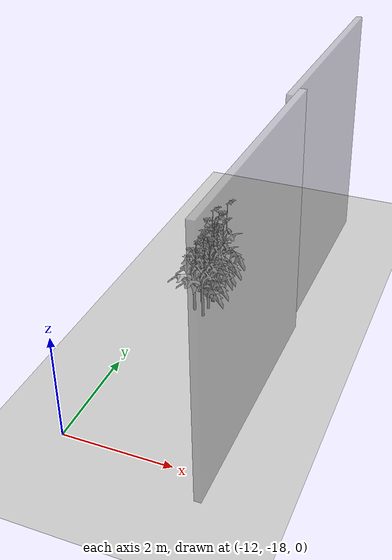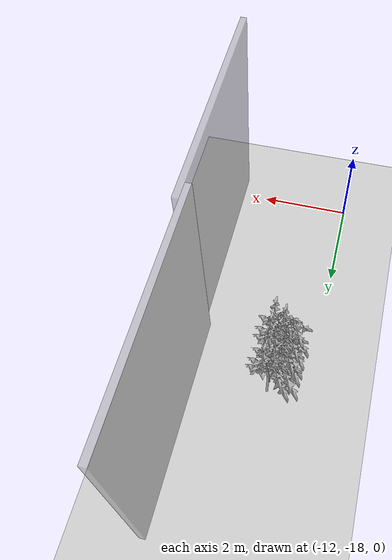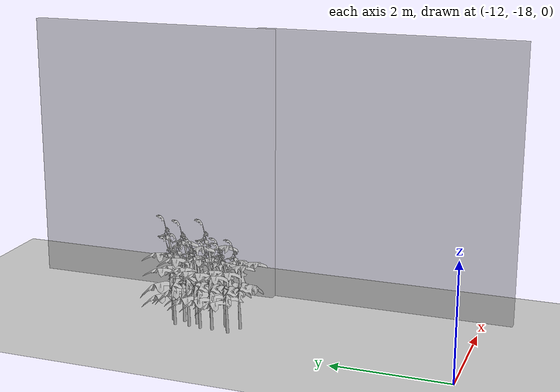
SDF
<sdf version="1.6">
 <world name="default">
  <model name="ground_plane">
   <static>1</static>
   <link name="link">
    <collision name="collision">
     <geometry><plane><normal>0 0 1</normal><size>100 100</size></plane></geometry>
     <surface>
      <contact><collide_bitmask>65535</collide_bitmask></contact>
      <friction><ode><mu>100</mu><mu2>50</mu2></ode></friction>
     </surface>
    </collision>
    <visual name="visual">
     <cast_shadows>0</cast_shadows>
     <geometry><plane><normal>0 0 1</normal><size>100 100</size></plane></geometry>
     <material>
      <script><uri>file://media/materials/scripts/gazebo.material</uri><name>Gazebo/Grey</name></script>
     </material>
    </visual>
   </link>
  </model>
  <model name="Front_Plant_1_0_clone">
   <model name="tomato_plant_medium">
    <static>1</static>
    <link name="link">
     <collision name="collision">
      <pose>0 0 0 1.5708 -0 0</pose>
      <geometry><mesh><scale>0.5 0.5 0.5</scale><uri>model://stick/meshes/stick.dae</uri></mesh></geometry>
     </collision>
     <visual name="visual">
      <geometry>
       <mesh><scale>5e-06 5e-06 6e-06</scale><uri>model://tomato_plant_medium/meshes/tomato-plant.dae</uri></mesh>
      </geometry>
     </visual>
    </link>
    <pose>0.087453 -0.595994 0.012396 0 -0 0</pose>
   </model>
   <model name="tomato_plant_medium_0">
    <static>1</static>
    <link name="link">
     <collision name="collision">
      <pose>0 0 0 1.5708 -0 0</pose>
      <geometry><mesh><scale>0.5 0.5 0.5</scale><uri>model://stick/meshes/stick.dae</uri></mesh></geometry>
     </collision>
     <visual name="visual">
      <geometry>
       <mesh><scale>5e-06 5e-06 6e-06</scale><uri>model://tomato_plant_medium/meshes/tomato-plant.dae</uri></mesh>
      </geometry>
     </visual>
    </link>
    <pose>-0.086166 -0.251822 0.012396 0 -0 0</pose>
   </model>
   <model name="tomato_plant_medium_1">
    <static>1</static>
    <link name="link">
     <collision name="collision">
      <pose>0 0 0 1.5708 -0 0</pose>
      <geometry><mesh><scale>0.5 0.5 0.5</scale><uri>model://stick/meshes/stick.dae</uri></mesh></geometry>
     </collision>
     <visual name="visual">
      <geometry>
       <mesh><scale>5e-06 5e-06 6e-06</scale><uri>model://tomato_plant_medium/meshes/tomato-plant.dae</uri></mesh>
      </geometry>
     </visual>
    </link>
    <pose>0.080199 0.118127 0.012396 0 -0 0</pose>
   </model>
   <model name="tomato_plant_small">
    <static>1</static>
    <link name="link">
     <collision name="collision">
      <pose>0 0 0 1.5708 -0 0</pose>
      <geometry><mesh><scale>0.5 0.45 0.5</scale><uri>model://stick/meshes/stick.dae</uri></mesh></geometry>
     </collision>
     <visual name="visual">
      <geometry>
       <mesh><scale>5e-06 5e-06 5e-06</scale><uri>model://tomato_plant_small/meshes/tomato-plant.dae</uri></mesh>
      </geometry>
     </visual>
    </link>
    <pose>0.099683 -1.12011 0.012396 0 -0 0</pose>
   </model>
   <model name="tomato_plant_small_0">
    <static>1</static>
    <link name="link">
     <collision name="collision">
      <pose>0 0 0 1.5708 -0 0</pose>
      <geometry><mesh><scale>0.5 0.45 0.5</scale><uri>model://stick/meshes/stick.dae</uri></mesh></geometry>
     </collision>
     <visual name="visual">
      <geometry>
       <mesh><scale>5e-06 5e-06 5e-06</scale><uri>model://tomato_plant_small/meshes/tomato-plant.dae</uri></mesh>
      </geometry>
     </visual>
    </link>
    <pose>-0.138771 -0.983982 0.012396 0 -0 0</pose>
   </model>
   <model name="tomato_plant_small_1">
    <static>1</static>
    <link name="link">
     <collision name="collision">
      <pose>0 0 0 1.5708 -0 0</pose>
      <geometry><mesh><scale>0.5 0.45 0.5</scale><uri>model://stick/meshes/stick.dae</uri></mesh></geometry>
     </collision>
     <visual name="visual">
      <geometry>
       <mesh><scale>5e-06 5e-06 5e-06</scale><uri>model://tomato_plant_small/meshes/tomato-plant.dae</uri></mesh>
      </geometry>
     </visual>
    </link>
    <pose>0.101334 -0.848814 0.012396 0 -0 0</pose>
   </model>
   <model name="tomato_plant_small_2">
    <static>1</static>
    <link name="link">
     <collision name="collision">
      <pose>0 0 0 1.5708 -0 0</pose>
      <geometry><mesh><scale>0.5 0.45 0.5</scale><uri>model://stick/meshes/stick.dae</uri></mesh></geometry>
     </collision>
     <visual name="visual">
      <geometry>
       <mesh><scale>5e-06 5e-06 5e-06</scale><uri>model://tomato_plant_small/meshes/tomato-plant.dae</uri></mesh>
      </geometry>
     </visual>
    </link>
    <pose>-0.103369 -0.683189 0.012396 0 -0 0</pose>
   </model>
   <model name="tomato_plant_small_3">
    <static>1</static>
    <link name="link">
     <collision name="collision">
      <pose>0 0 0 1.5708 -0 0</pose>
      <geometry><mesh><scale>0.5 0.45 0.5</scale><uri>model://stick/meshes/stick.dae</uri></mesh></geometry>
     </collision>
     <visual name="visual">
      <geometry>
       <mesh><scale>5e-06 5e-06 5e-06</scale><uri>model://tomato_plant_small/meshes/tomato-plant.dae</uri></mesh>
      </geometry>
     </visual>
    </link>
    <pose>-0.104381 -0.464811 0.012396 0 -0 0</pose>
   </model>
   <model name="tomato_plant_small_4">
    <static>1</static>
    <link name="link">
     <collision name="collision">
      <pose>0 0 0 1.5708 -0 0</pose>
      <geometry><mesh><scale>0.5 0.45 0.5</scale><uri>model://stick/meshes/stick.dae</uri></mesh></geometry>
     </collision>
     <visual name="visual">
      <geometry>
       <mesh><scale>5e-06 5e-06 5e-06</scale><uri>model://tomato_plant_small/meshes/tomato-plant.dae</uri></mesh>
      </geometry>
     </visual>
    </link>
    <pose>0.055604 -0.336879 0.012396 0 -0 0</pose>
   </model>
   <model name="tomato_plant_small_5">
    <static>1</static>
    <link name="link">
     <collision name="collision">
      <pose>0 0 0 1.5708 -0 0</pose>
      <geometry><mesh><scale>0.5 0.45 0.5</scale><uri>model://stick/meshes/stick.dae</uri></mesh></geometry>
     </collision>
     <visual name="visual">
      <geometry>
       <mesh><scale>5e-06 5e-06 5e-06</scale><uri>model://tomato_plant_small/meshes/tomato-plant.dae</uri></mesh>
      </geometry>
     </visual>
    </link>
    <pose>0.085059 -0.092572 0.012396 0 -0 0</pose>
   </model>
   <model name="tomato_plant_small_6">
    <static>1</static>
    <link name="link">
     <collision name="collision">
      <pose>0 0 0 1.5708 -0 0</pose>
      <geometry><mesh><scale>0.5 0.45 0.5</scale><uri>model://stick/meshes/stick.dae</uri></mesh></geometry>
     </collision>
     <visual name="visual">
      <geometry>
       <mesh><scale>5e-06 5e-06 5e-06</scale><uri>model://tomato_plant_small/meshes/tomato-plant.dae</uri></mesh>
      </geometry>
     </visual>
    </link>
    <pose>-0.096345 0.008888 0.012396 0 -0 0</pose>
   </model>
   <static>0</static>
   <pose>-11.1951 -13.0357 0 0 -0 0</pose>
  </model>
  <model name="wall_0_clone_1">
   <link name="link">
    <inertial>
     <mass>2.87883</mass>
     <inertia><ixx>11.0771</ixx><ixy>0</ixy><ixz>0</ixz><iyy>5.80298</iyy><iyz>0</iyz><izz>5.28163</izz></inertia>
    </inertial>
    <pose>0 -0.040293 1.94803 0 -0 0</pose>
    <visual name="visual">
     <geometry><box><size>0.12484 4.69043 4.91663</size></box></geometry>
     <material>
      <script><name>Gazebo/Grey</name><uri>file://media/materials/scripts/gazebo.material</uri></script>
      <ambient>0.3 0.3 0.3 1</ambient>
      <diffuse>0.7 0.7 0.7 1</diffuse>
      <specular>0.01 0.01 0.01 1</specular>
      <emissive>0 0 0 1</emissive>
      <shader type="vertex"><normal_map>__default__</normal_map></shader>
     </material>
     <transparency>0.5</transparency>
    </visual>
    <collision name="collision">
     <geometry><box><size>0.12484 4.69043 4.91663</size></box></geometry>
     <surface>
      <friction>
       <ode><mu>1</mu><mu2>1</mu2><fdir1>0 0 0</fdir1><slip1>0</slip1><slip2>0</slip2></ode>
       <torsional>
        <coefficient>1</coefficient>
        <patch_radius>0</patch_radius>
        <surface_radius>0</surface_radius>
        <use_patch_radius>1</use_patch_radius>
        <ode><slip>0</slip></ode>
       </torsional>
      </friction>
      <bounce><restitution_coefficient>0</restitution_coefficient><threshold>1e+06</threshold></bounce>
      <contact>
       <collide_without_contact>0</collide_without_contact>
       <collide_without_contact_bitmask>1</collide_without_contact_bitmask>
       <collide_bitmask>1</collide_bitmask>
       <ode>
        <soft_cfm>0</soft_cfm>
        <soft_erp>0.2</soft_erp>
        <kp>1e+13</kp>
        <kd>1</kd>
        <max_vel>0.01</max_vel>
        <min_depth>0</min_depth>
       </ode>
       <bullet>
        <split_impulse>1</split_impulse>
        <split_impulse_penetration_threshold>-0.01</split_impulse_penetration_threshold>
        <soft_cfm>0</soft_cfm>
        <soft_erp>0.2</soft_erp>
        <kp>1e+13</kp>
        <kd>1</kd>
       </bullet>
      </contact>
     </surface>
    </collision>
   </link>
   <static>0</static>
   <pose>-9.4665 -11.7789 0.520285 0 0 -0.003273</pose>
  </model>
  <model name="wall_0_clone_5">
   <link name="link">
    <inertial>
     <mass>2.87883</mass>
     <inertia><ixx>11.0771</ixx><ixy>0</ixy><ixz>0</ixz><iyy>5.80298</iyy><iyz>0</iyz><izz>5.28163</izz></inertia>
    </inertial>
    <pose>0 -0.040293 1.94803 0 -0 0</pose>
    <visual name="visual">
     <geometry><box><size>0.12484 4.69043 4.91663</size></box></geometry>
     <material>
      <script><name>Gazebo/Grey</name><uri>file://media/materials/scripts/gazebo.material</uri></script>
      <ambient>0.3 0.3 0.3 1</ambient>
      <diffuse>0.7 0.7 0.7 1</diffuse>
      <specular>0.01 0.01 0.01 1</specular>
      <emissive>0 0 0 1</emissive>
      <shader type="vertex"><normal_map>__default__</normal_map></shader>
     </material>
     <transparency>0.5</transparency>
    </visual>
    <collision name="collision">
     <geometry><box><size>0.12484 4.69043 4.91663</size></box></geometry>
     <surface>
      <friction>
       <ode><mu>1</mu><mu2>1</mu2><fdir1>0 0 0</fdir1><slip1>0</slip1><slip2>0</slip2></ode>
       <torsional>
        <coefficient>1</coefficient>
        <patch_radius>0</patch_radius>
        <surface_radius>0</surface_radius>
        <use_patch_radius>1</use_patch_radius>
        <ode><slip>0</slip></ode>
       </torsional>
      </friction>
      <bounce><restitution_coefficient>0</restitution_coefficient><threshold>1e+06</threshold></bounce>
      <contact>
       <collide_without_contact>0</collide_without_contact>
       <collide_without_contact_bitmask>1</collide_without_contact_bitmask>
       <collide_bitmask>1</collide_bitmask>
       <ode>
        <soft_cfm>0</soft_cfm>
        <soft_erp>0.2</soft_erp>
        <kp>1e+13</kp>
        <kd>1</kd>
        <max_vel>0.01</max_vel>
        <min_depth>0</min_depth>
       </ode>
       <bullet>
        <split_impulse>1</split_impulse>
        <split_impulse_penetration_threshold>-0.01</split_impulse_penetration_threshold>
        <soft_cfm>0</soft_cfm>
        <soft_erp>0.2</soft_erp>
        <kp>1e+13</kp>
        <kd>1</kd>
       </bullet>
      </contact>
     </surface>
    </collision>
   </link>
   <static>0</static>
   <pose>-9.35201 -16.1189 0.520284 1e-06 1e-06 -0.002429</pose>
  </model>
 </world>
</sdf>
